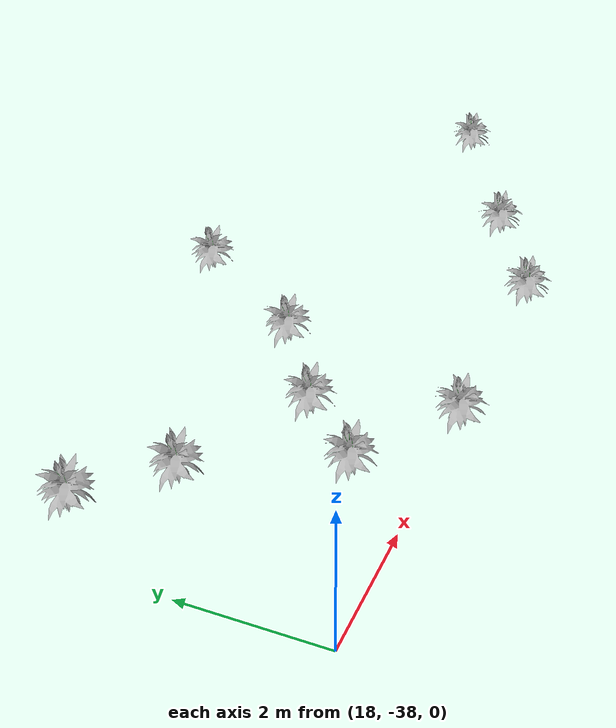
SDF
<sdf version="1.3">
 <world name="default">
  <physics type="ode">
   <update_rate>1000</update_rate>
   <gravity>0.0 0.0 -9.8</gravity>
   <ode>
    <constraints>
     <cfm>0.00001</cfm>
     <erp>0.2</erp>
     <contact_max_correcting_vel>100.0</contact_max_correcting_vel>
     <contact_surface_layer>0.001</contact_surface_layer>
    </constraints>
    <solver><type>quick</type><dt>0.001</dt><iters>50</iters><sor>1.3</sor></solver>
   </ode>
  </physics>
  <scene>
   <ambient>0.0 0.0 0.0 1.0</ambient>
   <background>0.7 0.7 0.7 1.0</background>
   <sky>
    <time>18</time>
    <sunrise>5</sunrise>
    <sunset>19</sunset>
    <clouds>
     <speed>0.02</speed>
     <direction>0</direction>
     <humidity>0.8</humidity>
     <mean_size>1</mean_size>
     <ambient>0.5 0.5 0.5 1.0</ambient>
    </clouds>
   </sky>
   <shadows>true</shadows>
   <grid>false</grid>
  </scene>
  <light name="sun" type="directional">
   <pose>0.0 0.0 20.0 0.0 0.0 0.0</pose>
   <diffuse>0.85 0.85 0.85 1.0</diffuse>
   <specular>0.15 0.15 0.15 1.0</specular>
   <attenuation>
    <range>1000.0</range>
    <constant>0.9</constant>
    <linear>0.01</linear>
    <quadratic>0.001</quadratic>
   </attenuation>
   <direction>-0.5 0.5 -1.0</direction>
  </light>
  <model name="Spathaphylum_33">
   <include>
    <uri>model://spathaphylum</uri>
    <pose>19.000000 -34.000000 0.000000 0.000000 0.000000 0.000000</pose>
   </include>
  </model>
  <model name="Spathaphylum_34">
   <include>
    <uri>model://spathaphylum</uri>
    <pose>20.000000 -35.000000 0.000000 0.000000 0.000000 0.000000</pose>
   </include>
  </model>
  <model name="Spathaphylum_35">
   <include>
    <uri>model://spathaphylum</uri>
    <pose>23.520400 -35.000000 0.000000 0.000000 0.000000 0.000000</pose>
   </include>
  </model>
  <model name="Spathaphylum_36">
   <include>
    <uri>model://spathaphylum</uri>
    <pose>22.536700 -38.000000 0.000000 0.000000 0.000000 0.000000</pose>
   </include>
  </model>
  <model name="Spathaphylum_37">
   <include>
    <uri>model://spathaphylum</uri>
    <pose>21.000000 -37.000000 0.000000 0.000000 0.000000 0.000000</pose>
   </include>
  </model>
  <model name="Spathaphylum_38">
   <include>
    <uri>model://spathaphylum</uri>
    <pose>22.000000 -36.000000 0.000000 0.000000 0.000000 0.000000</pose>
   </include>
  </model>
  <model name="Spathaphylum_39">
   <include>
    <uri>model://spathaphylum</uri>
    <pose>26.000000 -38.000000 0.000000 0.000000 0.000000 0.000000</pose>
   </include>
  </model>
  <model name="Spathaphylum_40">
   <include>
    <uri>model://spathaphylum</uri>
    <pose>28.000000 -37.000000 0.000000 0.000000 0.000000 0.000000</pose>
   </include>
  </model>
  <model name="Spathaphylum_41">
   <include>
    <uri>model://spathaphylum</uri>
    <pose>31.000000 -35.577500 0.000000 0.000000 0.000000 0.000000</pose>
   </include>
  </model>
  <model name="Spathaphylum_42">
   <include>
    <uri>model://spathaphylum</uri>
    <pose>25.000000 -33.000000 0.000000 0.000000 0.000000 0.000000</pose>
   </include>
  </model>
 </world>
</sdf>

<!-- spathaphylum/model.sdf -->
<sdf version="1.4">
	<model name="Spathaphylum">
		<pose>0 0 0 0 0 0</pose>
		<static>true</static>
		<allow_auto_disable>true</allow_auto_disable>
		<link name="link">
			<pose>0 0 0 0 0 0</pose>
			<inertial>
				<mass>10</mass>
				<pose>0 0 0 0 0 0</pose>
				<inertia>
					<ixx>10</ixx>
					<ixy>0</ixy>
					<ixz>0</ixz>
					<iyy>10</iyy>
					<iyz>0</iyz>
					<izz>10</izz>
				</inertia>
			</inertial>
			<visual name="visual">
				<geometry>
					<mesh>
						<uri>model://spathaphylum/meshes/Spathaphylum.dae</uri>
					</mesh>
				</geometry>
			</visual>
		</link>

	</model>
</sdf>
